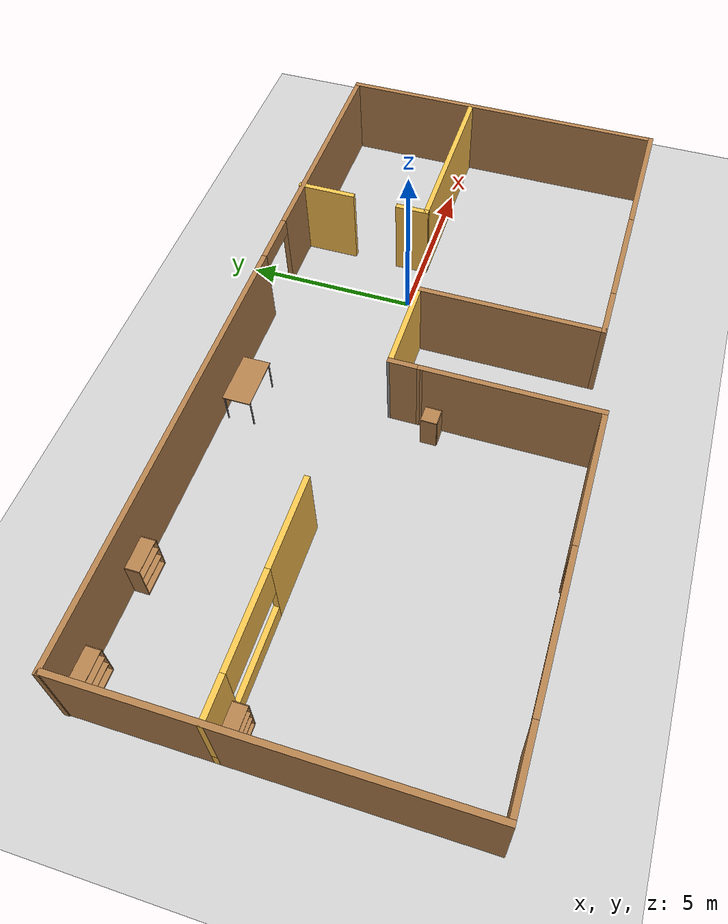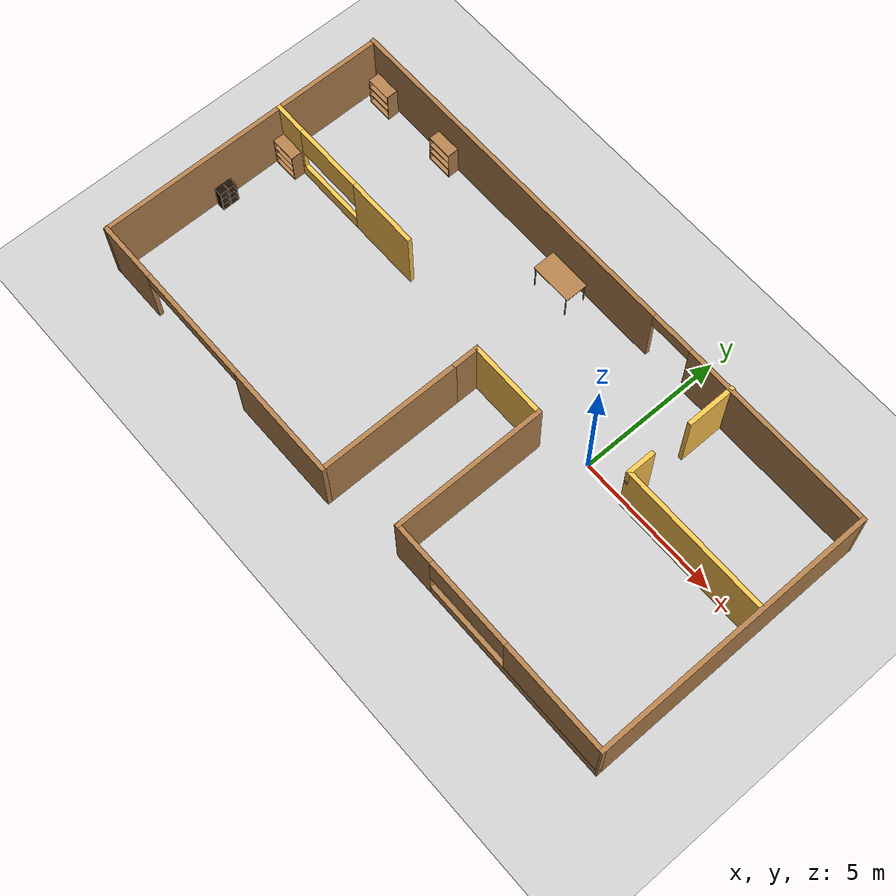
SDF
<sdf version="1.7">
 <world name="default">
  <model name="ground_plane">
   <static>1</static>
   <link name="link">
    <collision name="collision">
     <geometry><plane><normal>0 0 1</normal><size>100 100</size></plane></geometry>
     <surface>
      <contact><collide_bitmask>65535</collide_bitmask></contact>
      <friction><ode><mu>100</mu><mu2>50</mu2></ode></friction>
     </surface>
    </collision>
    <visual name="visual">
     <cast_shadows>0</cast_shadows>
     <geometry><plane><normal>0 0 1</normal><size>100 100</size></plane></geometry>
     <material>
      <script><uri>file://media/materials/scripts/gazebo.material</uri><name>Gazebo/Grey</name></script>
     </material>
    </visual>
   </link>
  </model>
  <model name="Building">
   <pose>-3.7513 -1.28826 0 0 -0 0</pose>
   <link name="Wall_0">
    <collision name="Wall_0_Collision">
     <geometry><box><size>10.3409 0.15 2.5</size></box></geometry>
     <pose>0 0 1.25 0 -0 0</pose>
    </collision>
    <visual name="Wall_0_Visual">
     <pose>0 0 1.25 0 -0 0</pose>
     <geometry><box><size>10.3409 0.15 2.5</size></box></geometry>
     <material>
      <script><uri>file://media/materials/scripts/gazebo.material</uri><name>Gazebo/Wood</name></script>
      <ambient>1 1 1 1</ambient>
     </material>
     <meta><layer>0</layer></meta>
    </visual>
    <pose>-10.4852 -0.044615 0 0 0 -1.5708</pose>
   </link>
   <link name="Wall_1">
    <pose>-5.42169 -5.14004 0 0 -0 0</pose>
    <visual name="Wall_1_Visual_0">
     <pose>-4.05898 0 1.25 0 -0 0</pose>
     <geometry><box><size>2.15905 0.15 2.5</size></box></geometry>
     <material>
      <script><uri>file://media/materials/scripts/gazebo.material</uri><name>Gazebo/Wood</name></script>
      <ambient>0.760784 0.662745 0.627451 1</ambient>
     </material>
     <meta><layer>0</layer></meta>
    </visual>
    <collision name="Wall_1_Collision_0">
     <geometry><box><size>2.15905 0.15 2.5</size></box></geometry>
     <pose>-4.05898 0 1.25 0 -0 0</pose>
    </collision>
    <visual name="Wall_1_Visual_1">
     <pose>3.14775 0 1.25 0 -0 0</pose>
     <geometry><box><size>3.98151 0.15 2.5</size></box></geometry>
     <material>
      <script><uri>file://media/materials/scripts/gazebo.material</uri><name>Gazebo/Wood</name></script>
      <ambient>0.760784 0.662745 0.627451 1</ambient>
     </material>
     <meta><layer>0</layer></meta>
    </visual>
    <collision name="Wall_1_Collision_1">
     <geometry><box><size>3.98151 0.15 2.5</size></box></geometry>
     <pose>3.14775 0 1.25 0 -0 0</pose>
    </collision>
    <visual name="Wall_1_Visual_2">
     <pose>-0.91123 0 2.25 0 -0 0</pose>
     <geometry><box><size>4.13645 0.15 0.5</size></box></geometry>
     <material>
      <script><uri>file://media/materials/scripts/gazebo.material</uri><name>Gazebo/Wood</name></script>
      <ambient>0.760784 0.662745 0.627451 1</ambient>
     </material>
     <meta><layer>0</layer></meta>
    </visual>
    <collision name="Wall_1_Collision_2">
     <geometry><box><size>4.13645 0.15 0.5</size></box></geometry>
     <pose>-0.91123 0 2.25 0 -0 0</pose>
    </collision>
   </link>
   <link name="Wall_11">
    <pose>-7.43569 1.35896 0 0 -0 3.14159</pose>
    <visual name="Wall_11_Visual_0">
     <pose>-1.85039 0 1.25 0 -0 0</pose>
     <geometry><box><size>2.54921 0.15 2.5</size></box></geometry>
     <material>
      <script><uri>file://media/materials/scripts/gazebo.material</uri><name>Gazebo/Grey</name></script>
      <ambient>1 0.764706 0.305882 1</ambient>
     </material>
     <meta><layer>0</layer></meta>
    </visual>
    <collision name="Wall_11_Collision_0">
     <geometry><box><size>2.54921 0.15 2.5</size></box></geometry>
     <pose>-1.85039 0 1.25 0 -0 0</pose>
    </collision>
    <visual name="Wall_11_Visual_1">
     <pose>1.27461 0 0.25 0 -0 0</pose>
     <geometry><box><size>3.70079 0.15 0.5</size></box></geometry>
     <material>
      <script><uri>file://media/materials/scripts/gazebo.material</uri><name>Gazebo/Grey</name></script>
      <ambient>1 0.764706 0.305882 1</ambient>
     </material>
     <meta><layer>0</layer></meta>
    </visual>
    <collision name="Wall_11_Collision_1">
     <geometry><box><size>3.70079 0.15 0.5</size></box></geometry>
     <pose>1.27461 0 0.25 0 -0 0</pose>
    </collision>
    <visual name="Wall_11_Visual_2">
     <pose>2.53911 0 1.5 0 -0 0</pose>
     <geometry><box><size>1.17177 0.15 2</size></box></geometry>
     <material>
      <script><uri>file://media/materials/scripts/gazebo.material</uri><name>Gazebo/Grey</name></script>
      <ambient>1 0.764706 0.305882 1</ambient>
     </material>
     <meta><layer>0</layer></meta>
    </visual>
    <collision name="Wall_11_Collision_2">
     <geometry><box><size>1.17177 0.15 2</size></box></geometry>
     <pose>2.53911 0 1.5 0 -0 0</pose>
    </collision>
    <visual name="Wall_11_Visual_3">
     <pose>0.688722 0 1.9 0 -0 0</pose>
     <geometry><box><size>2.52901 0.15 1.2</size></box></geometry>
     <material>
      <script><uri>file://media/materials/scripts/gazebo.material</uri><name>Gazebo/Grey</name></script>
      <ambient>1 0.764706 0.305882 1</ambient>
     </material>
     <meta><layer>0</layer></meta>
    </visual>
    <collision name="Wall_11_Collision_3">
     <geometry><box><size>2.52901 0.15 1.2</size></box></geometry>
     <pose>0.688722 0 1.9 0 -0 0</pose>
    </collision>
   </link>
   <link name="Wall_16">
    <collision name="Wall_16_Collision">
     <geometry><box><size>1.75 0.15 2.5</size></box></geometry>
     <pose>0 0 1.25 0 -0 0</pose>
    </collision>
    <visual name="Wall_16_Visual">
     <pose>0 0 1.25 0 -0 0</pose>
     <geometry><box><size>1.75 0.15 2.5</size></box></geometry>
     <material>
      <script><uri>file://media/materials/scripts/gazebo.material</uri><name>Gazebo/Grey</name></script>
      <ambient>1 0.764706 0.305882 1</ambient>
     </material>
     <meta><layer>0</layer></meta>
    </visual>
    <pose>5.32883 4.34004 0 0 -0 1.5708</pose>
   </link>
   <link name="Wall_18">
    <collision name="Wall_18_Collision">
     <geometry><box><size>1 0.15 2.5</size></box></geometry>
     <pose>0 0 1.25 0 -0 0</pose>
    </collision>
    <visual name="Wall_18_Visual">
     <pose>0 0 1.25 0 -0 0</pose>
     <geometry><box><size>1 0.15 2.5</size></box></geometry>
     <material>
      <script><uri>file://media/materials/scripts/gazebo.material</uri><name>Gazebo/Grey</name></script>
      <ambient>1 0.764706 0.305882 1</ambient>
     </material>
     <meta><layer>0</layer></meta>
    </visual>
    <pose>5.29366 1.63753 0 0 0 -1.5708</pose>
   </link>
   <link name="Wall_19">
    <collision name="Wall_19_Collision">
     <geometry><box><size>5.25 0.15 2.5</size></box></geometry>
     <pose>0 0 1.25 0 -0 0</pose>
    </collision>
    <visual name="Wall_19_Visual">
     <pose>0 0 1.25 0 -0 0</pose>
     <geometry><box><size>5.25 0.15 2.5</size></box></geometry>
     <material>
      <script><uri>file://media/materials/scripts/gazebo.material</uri><name>Gazebo/Grey</name></script>
      <ambient>1 0.764706 0.305882 1</ambient>
     </material>
     <meta><layer>0</layer></meta>
    </visual>
    <pose>7.84366 1.21253 0 0 -0 0</pose>
   </link>
   <link name="Wall_2">
    <collision name="Wall_2_Collision">
     <geometry><box><size>5 0.15 2.5</size></box></geometry>
     <pose>0 0 1.25 0 -0 0</pose>
    </collision>
    <visual name="Wall_2_Visual">
     <pose>0 0 1.25 0 -0 0</pose>
     <geometry><box><size>5 0.15 2.5</size></box></geometry>
     <material>
      <script><uri>file://media/materials/scripts/gazebo.material</uri><name>Gazebo/Wood</name></script>
      <ambient>1 1 1 1</ambient>
     </material>
     <meta><layer>0</layer></meta>
    </visual>
    <pose>-0.358372 -2.71492 0 0 -0 1.57087</pose>
   </link>
   <link name="Wall_3">
    <collision name="Wall_3_Collision">
     <geometry><box><size>0.975755 0.15 2.5</size></box></geometry>
     <pose>0 0 1.25 0 -0 0</pose>
    </collision>
    <visual name="Wall_3_Visual">
     <pose>0 0 1.25 0 -0 0</pose>
     <geometry><box><size>0.975755 0.15 2.5</size></box></geometry>
     <material>
      <script><uri>file://media/materials/scripts/gazebo.material</uri><name>Gazebo/Wood</name></script>
      <ambient>1 1 1 1</ambient>
     </material>
     <meta><layer>0</layer></meta>
    </visual>
    <pose>-0.358372 0.123081 0 0 -0 1.57037</pose>
   </link>
   <link name="Wall_4">
    <collision name="Wall_4_Collision">
     <geometry><box><size>0.15 0.15 2.5</size></box></geometry>
     <pose>0 0 1.25 0 -0 0</pose>
    </collision>
    <visual name="Wall_4_Visual">
     <pose>0 0 1.25 0 -0 0</pose>
     <geometry><box><size>0.15 0.15 2.5</size></box></geometry>
     <material>
      <script><uri>file://media/materials/scripts/gazebo.material</uri><name>Gazebo/Grey</name></script>
      <ambient>1 1 1 1</ambient>
     </material>
     <meta><layer>0</layer></meta>
    </visual>
    <pose>-0.358196 0.535958 0 0 -0 0</pose>
   </link>
   <link name="Wall_5">
    <collision name="Wall_5_Collision">
     <geometry><box><size>2.795 0.15 2.5</size></box></geometry>
     <pose>0 0 1.25 0 -0 0</pose>
    </collision>
    <visual name="Wall_5_Visual">
     <pose>0 0 1.25 0 -0 0</pose>
     <geometry><box><size>2.795 0.15 2.5</size></box></geometry>
     <material>
      <script><uri>file://media/materials/scripts/gazebo.material</uri><name>Gazebo/Grey</name></script>
      <ambient>1 0.764706 0.305882 1</ambient>
     </material>
     <meta><layer>0</layer></meta>
    </visual>
    <pose>0.964304 0.535958 0 0 -0 0</pose>
   </link>
   <link name="Wall_6">
    <collision name="Wall_6_Collision">
     <geometry><box><size>5.3177 0.15 2.5</size></box></geometry>
     <pose>0 0 1.25 0 -0 0</pose>
    </collision>
    <visual name="Wall_6_Visual">
     <pose>0 0 1.25 0 -0 0</pose>
     <geometry><box><size>5.3177 0.15 2.5</size></box></geometry>
     <material>
      <script><uri>file://media/materials/scripts/gazebo.material</uri><name>Gazebo/Wood</name></script>
      <ambient>1 1 1 1</ambient>
     </material>
     <meta><layer>0</layer></meta>
    </visual>
    <pose>2.2868 -2.04804 0 0 0 -1.5708</pose>
   </link>
   <link name="Wall_7">
    <pose>6.3973 -4.62854 0 0 -0 0.000851</pose>
    <visual name="Wall_7_Visual_0">
     <pose>-3.44746 0 1.25 0 -0 0</pose>
     <geometry><box><size>1.47674 0.15 2.5</size></box></geometry>
     <material>
      <script><uri>file://media/materials/scripts/gazebo.material</uri><name>Gazebo/Wood</name></script>
      <ambient>1 1 1 1</ambient>
     </material>
     <meta><layer>0</layer></meta>
    </visual>
    <collision name="Wall_7_Collision_0">
     <geometry><box><size>1.47674 0.15 2.5</size></box></geometry>
     <pose>-3.44746 0 1.25 0 -0 0</pose>
    </collision>
    <visual name="Wall_7_Visual_1">
     <pose>0.738369 0 0.25 0 -0 0</pose>
     <geometry><box><size>6.89492 0.15 0.5</size></box></geometry>
     <material>
      <script><uri>file://media/materials/scripts/gazebo.material</uri><name>Gazebo/Wood</name></script>
      <ambient>1 1 1 1</ambient>
     </material>
     <meta><layer>0</layer></meta>
    </visual>
    <collision name="Wall_7_Collision_1">
     <geometry><box><size>6.89492 0.15 0.5</size></box></geometry>
     <pose>0.738369 0 0.25 0 -0 0</pose>
    </collision>
    <visual name="Wall_7_Visual_2">
     <pose>2.26409 0 1.5 0 -0 0</pose>
     <geometry><box><size>3.84348 0.15 2</size></box></geometry>
     <material>
      <script><uri>file://media/materials/scripts/gazebo.material</uri><name>Gazebo/Wood</name></script>
      <ambient>1 1 1 1</ambient>
     </material>
     <meta><layer>0</layer></meta>
    </visual>
    <collision name="Wall_7_Collision_2">
     <geometry><box><size>3.84348 0.15 2</size></box></geometry>
     <pose>2.26409 0 1.5 0 -0 0</pose>
    </collision>
    <visual name="Wall_7_Visual_3">
     <pose>-1.18337 0 1.9 0 -0 0</pose>
     <geometry><box><size>3.05144 0.15 1.2</size></box></geometry>
     <material>
      <script><uri>file://media/materials/scripts/gazebo.material</uri><name>Gazebo/Wood</name></script>
      <ambient>1 1 1 1</ambient>
     </material>
     <meta><layer>0</layer></meta>
    </visual>
    <collision name="Wall_7_Collision_3">
     <geometry><box><size>3.05144 0.15 1.2</size></box></geometry>
     <pose>-1.18337 0 1.9 0 -0 0</pose>
    </collision>
   </link>
   <link name="Wall_8">
    <collision name="Wall_8_Collision">
     <geometry><box><size>9.87 0.15 2.5</size></box></geometry>
     <pose>0 0 1.25 0 -0 0</pose>
    </collision>
    <visual name="Wall_8_Visual">
     <pose>0 0 1.25 0 -0 0</pose>
     <geometry><box><size>9.87 0.15 2.5</size></box></geometry>
     <material>
      <script><uri>file://media/materials/scripts/gazebo.material</uri><name>Gazebo/Wood</name></script>
      <ambient>1 1 1 1</ambient>
     </material>
     <meta><layer>0</layer></meta>
    </visual>
    <pose>10.5078 0.234958 0 0 -0 1.5708</pose>
   </link>
   <link name="Wall_9">
    <pose>-0.000196 5.09496 0 0 -0 3.14159</pose>
    <visual name="Wall_9_Visual_0">
     <pose>-7.14444 0 1.25 0 -0 0</pose>
     <geometry><box><size>6.87713 0.15 2.5</size></box></geometry>
     <material>
      <script><uri>file://media/materials/scripts/gazebo.material</uri><name>Gazebo/Wood</name></script>
      <ambient>1 1 1 1</ambient>
     </material>
     <meta><layer>0</layer></meta>
    </visual>
    <collision name="Wall_9_Collision_0">
     <geometry><box><size>6.87713 0.15 2.5</size></box></geometry>
     <pose>-7.14444 0 1.25 0 -0 0</pose>
    </collision>
    <visual name="Wall_9_Visual_1">
     <pose>4.18758 0 1.25 0 -0 0</pose>
     <geometry><box><size>12.7908 0.15 2.5</size></box></geometry>
     <material>
      <script><uri>file://media/materials/scripts/gazebo.material</uri><name>Gazebo/Wood</name></script>
      <ambient>1 1 1 1</ambient>
     </material>
     <meta><layer>0</layer></meta>
    </visual>
    <collision name="Wall_9_Collision_1">
     <geometry><box><size>12.7908 0.15 2.5</size></box></geometry>
     <pose>4.18758 0 1.25 0 -0 0</pose>
    </collision>
    <visual name="Wall_9_Visual_2">
     <pose>-2.95686 0 2.25 0 -0 0</pose>
     <geometry><box><size>1.49804 0.15 0.5</size></box></geometry>
     <material>
      <script><uri>file://media/materials/scripts/gazebo.material</uri><name>Gazebo/Wood</name></script>
      <ambient>1 1 1 1</ambient>
     </material>
     <meta><layer>0</layer></meta>
    </visual>
    <collision name="Wall_9_Collision_2">
     <geometry><box><size>1.49804 0.15 0.5</size></box></geometry>
     <pose>-2.95686 0 2.25 0 -0 0</pose>
    </collision>
   </link>
   <static>1</static>
  </model>
  <model name="table_clone">
   <static>1</static>
   <link name="link">
    <collision name="surface">
     <pose>0 0 1 0 -0 0</pose>
     <geometry><box><size>1.5 0.8 0.03</size></box></geometry>
     <surface><friction><ode><mu>0.6</mu><mu2>0.6</mu2></ode></friction></surface>
    </collision>
    <visual name="visual1">
     <pose>0 0 1 0 -0 0</pose>
     <geometry><box><size>1.5 0.8 0.03</size></box></geometry>
     <material>
      <script><uri>file://media/materials/scripts/gazebo.material</uri><name>Gazebo/Wood</name></script>
     </material>
    </visual>
    <collision name="front_left_leg">
     <pose>0.68 0.38 0.5 0 -0 0</pose>
     <geometry><cylinder><radius>0.02</radius><length>1</length></cylinder></geometry>
    </collision>
    <visual name="front_left_leg">
     <pose>0.68 0.38 0.5 0 -0 0</pose>
     <geometry><cylinder><radius>0.02</radius><length>1</length></cylinder></geometry>
     <material>
      <script><uri>file://media/materials/scripts/gazebo.material</uri><name>Gazebo/Grey</name></script>
     </material>
    </visual>
    <collision name="front_right_leg">
     <pose>0.68 -0.38 0.5 0 -0 0</pose>
     <geometry><cylinder><radius>0.02</radius><length>1</length></cylinder></geometry>
    </collision>
    <visual name="front_right_leg">
     <pose>0.68 -0.38 0.5 0 -0 0</pose>
     <geometry><cylinder><radius>0.02</radius><length>1</length></cylinder></geometry>
     <material>
      <script><uri>file://media/materials/scripts/gazebo.material</uri><name>Gazebo/Grey</name></script>
     </material>
    </visual>
    <collision name="back_right_leg">
     <pose>-0.68 -0.38 0.5 0 -0 0</pose>
     <geometry><cylinder><radius>0.02</radius><length>1</length></cylinder></geometry>
    </collision>
    <visual name="back_right_leg">
     <pose>-0.68 -0.38 0.5 0 -0 0</pose>
     <geometry><cylinder><radius>0.02</radius><length>1</length></cylinder></geometry>
     <material>
      <script><uri>file://media/materials/scripts/gazebo.material</uri><name>Gazebo/Grey</name></script>
     </material>
    </visual>
    <collision name="back_left_leg">
     <pose>-0.68 0.38 0.5 0 -0 0</pose>
     <geometry><cylinder><radius>0.02</radius><length>1</length></cylinder></geometry>
    </collision>
    <visual name="back_left_leg">
     <pose>-0.68 0.38 0.5 0 -0 0</pose>
     <geometry><cylinder><radius>0.02</radius><length>1</length></cylinder></geometry>
     <material>
      <script><uri>file://media/materials/scripts/gazebo.material</uri><name>Gazebo/Grey</name></script>
     </material>
    </visual>
   </link>
   <pose>-4.81821 3.19325 0 0 -0 0</pose>
  </model>
  <model name="bookshelf_0">
   <static>1</static>
   <link name="link">
    <inertial><mass>1</mass></inertial>
    <collision name="back">
     <pose>0 0.005 0.6 0 -0 0</pose>
     <geometry><box><size>0.9 0.01 1.2</size></box></geometry>
    </collision>
    <visual name="visual1">
     <pose>0 0.005 0.6 0 -0 0</pose>
     <geometry><box><size>0.9 0.01 1.2</size></box></geometry>
     <material>
      <script><uri>file://media/materials/scripts/gazebo.material</uri><name>Gazebo/Wood</name></script>
     </material>
    </visual>
    <collision name="left_side">
     <pose>0.45 -0.195 0.6 0 -0 0</pose>
     <geometry><box><size>0.02 0.4 1.2</size></box></geometry>
    </collision>
    <visual name="visual2">
     <pose>0.45 -0.195 0.6 0 -0 0</pose>
     <geometry><box><size>0.02 0.4 1.2</size></box></geometry>
     <material>
      <script><uri>file://media/materials/scripts/gazebo.material</uri><name>Gazebo/Wood</name></script>
     </material>
    </visual>
    <collision name="right_side">
     <pose>-0.45 -0.195 0.6 0 -0 0</pose>
     <geometry><box><size>0.02 0.4 1.2</size></box></geometry>
    </collision>
    <visual name="visual3">
     <pose>-0.45 -0.195 0.6 0 -0 0</pose>
     <geometry><box><size>0.02 0.4 1.2</size></box></geometry>
     <material>
      <script><uri>file://media/materials/scripts/gazebo.material</uri><name>Gazebo/Wood</name></script>
     </material>
    </visual>
    <collision name="bottom">
     <pose>0 -0.195 0.03 0 -0 0</pose>
     <geometry><box><size>0.88 0.4 0.06</size></box></geometry>
    </collision>
    <visual name="visual4">
     <pose>0 -0.195 0.03 0 -0 0</pose>
     <geometry><box><size>0.88 0.4 0.06</size></box></geometry>
     <material>
      <script><uri>file://media/materials/scripts/gazebo.material</uri><name>Gazebo/Wood</name></script>
     </material>
    </visual>
    <collision name="top">
     <pose>0 -0.195 1.19 0 -0 0</pose>
     <geometry><box><size>0.88 0.4 0.02</size></box></geometry>
    </collision>
    <visual name="visual5">
     <pose>0 -0.195 1.19 0 -0 0</pose>
     <geometry><box><size>0.88 0.4 0.02</size></box></geometry>
     <material>
      <script><uri>file://media/materials/scripts/gazebo.material</uri><name>Gazebo/Wood</name></script>
     </material>
    </visual>
    <collision name="low_shelf">
     <pose>0 -0.195 0.43 0 -0 0</pose>
     <geometry><box><size>0.88 0.4 0.02</size></box></geometry>
    </collision>
    <visual name="visual6">
     <pose>0 -0.195 0.43 0 -0 0</pose>
     <geometry><box><size>0.88 0.4 0.02</size></box></geometry>
     <material>
      <script><uri>file://media/materials/scripts/gazebo.material</uri><name>Gazebo/Wood</name></script>
     </material>
    </visual>
    <collision name="high_shelf">
     <pose>0 -0.195 0.8 0 -0 0</pose>
     <geometry><box><size>0.88 0.4 0.02</size></box></geometry>
    </collision>
    <visual name="visual7">
     <pose>0 -0.195 0.8 0 -0 0</pose>
     <geometry><box><size>0.88 0.4 0.02</size></box></geometry>
     <material>
      <script><uri>file://media/materials/scripts/gazebo.material</uri><name>Gazebo/Wood</name></script>
     </material>
    </visual>
   </link>
   <pose>-13.495 3.67812 0 0 -0 0</pose>
  </model>
  <model name="bookshelf_0_clone">
   <static>1</static>
   <link name="link">
    <inertial><mass>1</mass></inertial>
    <collision name="back">
     <pose>0 0.005 0.6 0 -0 0</pose>
     <geometry><box><size>0.9 0.01 1.2</size></box></geometry>
    </collision>
    <visual name="visual1">
     <pose>0 0.005 0.6 0 -0 0</pose>
     <geometry><box><size>0.9 0.01 1.2</size></box></geometry>
     <material>
      <script><uri>file://media/materials/scripts/gazebo.material</uri><name>Gazebo/Wood</name></script>
     </material>
    </visual>
    <collision name="left_side">
     <pose>0.45 -0.195 0.6 0 -0 0</pose>
     <geometry><box><size>0.02 0.4 1.2</size></box></geometry>
    </collision>
    <visual name="visual2">
     <pose>0.45 -0.195 0.6 0 -0 0</pose>
     <geometry><box><size>0.02 0.4 1.2</size></box></geometry>
     <material>
      <script><uri>file://media/materials/scripts/gazebo.material</uri><name>Gazebo/Wood</name></script>
     </material>
    </visual>
    <collision name="right_side">
     <pose>-0.45 -0.195 0.6 0 -0 0</pose>
     <geometry><box><size>0.02 0.4 1.2</size></box></geometry>
    </collision>
    <visual name="visual3">
     <pose>-0.45 -0.195 0.6 0 -0 0</pose>
     <geometry><box><size>0.02 0.4 1.2</size></box></geometry>
     <material>
      <script><uri>file://media/materials/scripts/gazebo.material</uri><name>Gazebo/Wood</name></script>
     </material>
    </visual>
    <collision name="bottom">
     <pose>0 -0.195 0.03 0 -0 0</pose>
     <geometry><box><size>0.88 0.4 0.06</size></box></geometry>
    </collision>
    <visual name="visual4">
     <pose>0 -0.195 0.03 0 -0 0</pose>
     <geometry><box><size>0.88 0.4 0.06</size></box></geometry>
     <material>
      <script><uri>file://media/materials/scripts/gazebo.material</uri><name>Gazebo/Wood</name></script>
     </material>
    </visual>
    <collision name="top">
     <pose>0 -0.195 1.19 0 -0 0</pose>
     <geometry><box><size>0.88 0.4 0.02</size></box></geometry>
    </collision>
    <visual name="visual5">
     <pose>0 -0.195 1.19 0 -0 0</pose>
     <geometry><box><size>0.88 0.4 0.02</size></box></geometry>
     <material>
      <script><uri>file://media/materials/scripts/gazebo.material</uri><name>Gazebo/Wood</name></script>
     </material>
    </visual>
    <collision name="low_shelf">
     <pose>0 -0.195 0.43 0 -0 0</pose>
     <geometry><box><size>0.88 0.4 0.02</size></box></geometry>
    </collision>
    <visual name="visual6">
     <pose>0 -0.195 0.43 0 -0 0</pose>
     <geometry><box><size>0.88 0.4 0.02</size></box></geometry>
     <material>
      <script><uri>file://media/materials/scripts/gazebo.material</uri><name>Gazebo/Wood</name></script>
     </material>
    </visual>
    <collision name="high_shelf">
     <pose>0 -0.195 0.8 0 -0 0</pose>
     <geometry><box><size>0.88 0.4 0.02</size></box></geometry>
    </collision>
    <visual name="visual7">
     <pose>0 -0.195 0.8 0 -0 0</pose>
     <geometry><box><size>0.88 0.4 0.02</size></box></geometry>
     <material>
      <script><uri>file://media/materials/scripts/gazebo.material</uri><name>Gazebo/Wood</name></script>
     </material>
    </visual>
   </link>
   <pose>-10.5967 3.72008 0 0 -0 0</pose>
  </model>
  <model name="cabinet_clone_0">
   <static>1</static>
   <link name="cabinet_bottom_plate">
    <inertial>
     <pose>0 0 -1 0 -0 0</pose>
     <inertia><ixx>2.05</ixx><ixy>0</ixy><ixz>0</ixz><iyy>2.05</iyy><iyz>0</iyz><izz>2.05</izz></inertia>
     <mass>25</mass>
    </inertial>
    <collision name="cabinet_bottom_plate_geom">
     <pose>0 0 0.01 0 -0 0</pose>
     <geometry><box><size>0.45 0.45 0.02</size></box></geometry>
    </collision>
    <visual name="cabinet_bottom_plate_geom_visual">
     <pose>0 0 0.01 0 -0 0</pose>
     <geometry><box><size>0.45 0.45 0.02</size></box></geometry>
     <material>
      <script><uri>file://media/materials/scripts/gazebo.material</uri><name>Gazebo/Wood</name></script>
     </material>
    </visual>
    <collision name="cabinet_bottom_plate_geom_cabinet_back_plate">
     <pose>0.235 0 0.51 0 -0 0</pose>
     <geometry><box><size>0.02 0.45 1.02</size></box></geometry>
    </collision>
    <visual name="cabinet_bottom_plate_geom_cabinet_back_plate_visual">
     <pose>0.235 0 0.51 0 -0 0</pose>
     <geometry><box><size>0.02 0.45 1.02</size></box></geometry>
     <material>
      <script><uri>file://media/materials/scripts/gazebo.material</uri><name>Gazebo/Wood</name></script>
     </material>
    </visual>
    <collision name="cabinet_bottom_plate_geom_cabinet_left_plate">
     <pose>0 0.235 0.51 0 -0 0</pose>
     <geometry><box><size>0.45 0.02 1.02</size></box></geometry>
    </collision>
    <visual name="cabinet_bottom_plate_geom_cabinet_left_plate_visual">
     <pose>0 0.235 0.51 0 -0 0</pose>
     <geometry><box><size>0.45 0.02 1.02</size></box></geometry>
     <material>
      <script><uri>file://media/materials/scripts/gazebo.material</uri><name>Gazebo/Wood</name></script>
     </material>
    </visual>
    <collision name="cabinet_bottom_plate_geom_cabinet_middle_plate">
     <pose>0 0 0.51 0 -0 0</pose>
     <geometry><box><size>0.45 0.45 0.02</size></box></geometry>
    </collision>
    <visual name="cabinet_bottom_plate_geom_cabinet_middle_plate_visual">
     <pose>0 0 0.51 0 -0 0</pose>
     <geometry><box><size>0.45 0.45 0.02</size></box></geometry>
     <material>
      <script><uri>file://media/materials/scripts/gazebo.material</uri><name>Gazebo/Wood</name></script>
     </material>
    </visual>
    <collision name="cabinet_bottom_plate_geom_cabinet_right_plate">
     <pose>0 -0.235 0.51 0 -0 0</pose>
     <geometry><box><size>0.45 0.02 1.02</size></box></geometry>
    </collision>
    <visual name="cabinet_bottom_plate_geom_cabinet_right_plate_visual">
     <pose>0 -0.235 0.51 0 -0 0</pose>
     <geometry><box><size>0.45 0.02 1.02</size></box></geometry>
     <material>
      <script><uri>file://media/materials/scripts/gazebo.material</uri><name>Gazebo/Wood</name></script>
     </material>
    </visual>
    <collision name="cabinet_bottom_plate_geom_cabinet_top_plate">
     <pose>0 0 1.01 0 -0 0</pose>
     <geometry><box><size>0.45 0.45 0.02</size></box></geometry>
    </collision>
    <visual name="cabinet_bottom_plate_geom_cabinet_top_plate_visual">
     <pose>0 0 1.01 0 -0 0</pose>
     <geometry><box><size>0.45 0.45 0.02</size></box></geometry>
     <material>
      <script><uri>file://media/materials/scripts/gazebo.material</uri><name>Gazebo/Wood</name></script>
     </material>
    </visual>
   </link>
   <pose>-4.47117 -2.00227 0 0 0 -1.58296</pose>
  </model>
  <model name="bookshelf_1">
   <static>1</static>
   <link name="link">
    <inertial><mass>1</mass></inertial>
    <collision name="back">
     <pose>0 0.005 0.6 0 -0 0</pose>
     <geometry><box><size>0.9 0.01 1.2</size></box></geometry>
    </collision>
    <visual name="visual1">
     <pose>0 0.005 0.6 0 -0 0</pose>
     <geometry><box><size>0.9 0.01 1.2</size></box></geometry>
     <material>
      <script><uri>file://media/materials/scripts/gazebo.material</uri><name>Gazebo/Wood</name></script>
     </material>
    </visual>
    <collision name="left_side">
     <pose>0.45 -0.195 0.6 0 -0 0</pose>
     <geometry><box><size>0.02 0.4 1.2</size></box></geometry>
    </collision>
    <visual name="visual2">
     <pose>0.45 -0.195 0.6 0 -0 0</pose>
     <geometry><box><size>0.02 0.4 1.2</size></box></geometry>
     <material>
      <script><uri>file://media/materials/scripts/gazebo.material</uri><name>Gazebo/Wood</name></script>
     </material>
    </visual>
    <collision name="right_side">
     <pose>-0.45 -0.195 0.6 0 -0 0</pose>
     <geometry><box><size>0.02 0.4 1.2</size></box></geometry>
    </collision>
    <visual name="visual3">
     <pose>-0.45 -0.195 0.6 0 -0 0</pose>
     <geometry><box><size>0.02 0.4 1.2</size></box></geometry>
     <material>
      <script><uri>file://media/materials/scripts/gazebo.material</uri><name>Gazebo/Wood</name></script>
     </material>
    </visual>
    <collision name="bottom">
     <pose>0 -0.195 0.03 0 -0 0</pose>
     <geometry><box><size>0.88 0.4 0.06</size></box></geometry>
    </collision>
    <visual name="visual4">
     <pose>0 -0.195 0.03 0 -0 0</pose>
     <geometry><box><size>0.88 0.4 0.06</size></box></geometry>
     <material>
      <script><uri>file://media/materials/scripts/gazebo.material</uri><name>Gazebo/Wood</name></script>
     </material>
    </visual>
    <collision name="top">
     <pose>0 -0.195 1.19 0 -0 0</pose>
     <geometry><box><size>0.88 0.4 0.02</size></box></geometry>
    </collision>
    <visual name="visual5">
     <pose>0 -0.195 1.19 0 -0 0</pose>
     <geometry><box><size>0.88 0.4 0.02</size></box></geometry>
     <material>
      <script><uri>file://media/materials/scripts/gazebo.material</uri><name>Gazebo/Wood</name></script>
     </material>
    </visual>
    <collision name="low_shelf">
     <pose>0 -0.195 0.43 0 -0 0</pose>
     <geometry><box><size>0.88 0.4 0.02</size></box></geometry>
    </collision>
    <visual name="visual6">
     <pose>0 -0.195 0.43 0 -0 0</pose>
     <geometry><box><size>0.88 0.4 0.02</size></box></geometry>
     <material>
      <script><uri>file://media/materials/scripts/gazebo.material</uri><name>Gazebo/Wood</name></script>
     </material>
    </visual>
    <collision name="high_shelf">
     <pose>0 -0.195 0.8 0 -0 0</pose>
     <geometry><box><size>0.88 0.4 0.02</size></box></geometry>
    </collision>
    <visual name="visual7">
     <pose>0 -0.195 0.8 0 -0 0</pose>
     <geometry><box><size>0.88 0.4 0.02</size></box></geometry>
     <material>
      <script><uri>file://media/materials/scripts/gazebo.material</uri><name>Gazebo/Wood</name></script>
     </material>
    </visual>
   </link>
   <pose>-13.6966 -0.003768 0 0 -0 0</pose>
  </model>
  <model name="6_Cube_StorageE">
   <link name="Wall_0">
    <pose>0 0 0.01 0 -0 0</pose>
    <inertial>
     <mass>1.6201</mass>
     <inertia><ixx>0.0119</ixx><iyy>0.0631</iyy><izz>0.0513</izz><ixy>0</ixy><ixz>0</ixz><iyz>0</iyz></inertia>
    </inertial>
    <collision name="Wall_0_Collision"><geometry><box><size>0.616 0.296 0.02</size></box></geometry></collision>
    <visual name="Wall_0_Visual">
     <geometry><box><size>0.616 0.296 0.02</size></box></geometry>
     <material>
      <script><uri>file://media/materials/scripts/gazebo.material</uri><name>Gazebo/Grey</name></script>
      <ambient>0.105882 0.0509804 0 1</ambient>
     </material>
    </visual>
   </link>
   <joint name="0_2" type="fixed">
    <pose>-0.308 0 0 0 -0 0</pose>
    <parent>Wall_2</parent>
    <child>Wall_0</child>
    <axis><xyz>1 0 0</xyz><limit><lower>-1e+16</lower><upper>1e+16</upper></limit></axis>
   </joint>
   <joint name="0_12" type="fixed">
    <parent>Wall_12</parent>
    <child>Wall_0</child>
    <axis><xyz>0 0 1</xyz><limit><lower>-1e+16</lower><upper>1e+16</upper></limit></axis>
   </joint>
   <joint name="0_4" type="fixed">
    <pose>0.308 0 0 0 -0 0</pose>
    <parent>Wall_4</parent>
    <child>Wall_0</child>
    <axis><xyz>1 0 0</xyz><limit><lower>-1e+16</lower><upper>1e+16</upper></limit></axis>
   </joint>
   <link name="Wall_10">
    <pose>0 0 0.61 0 -0 0</pose>
    <inertial>
     <mass>1.6201</mass>
     <inertia><ixx>0.0119</ixx><iyy>0.0631</iyy><izz>0.0513</izz><ixy>0</ixy><ixz>0</ixz><iyz>0</iyz></inertia>
    </inertial>
    <collision name="Wall_10_Collision"><geometry><box><size>0.616 0.296 0.02</size></box></geometry></collision>
    <visual name="Wall_10_Visual">
     <geometry><box><size>0.616 0.296 0.02</size></box></geometry>
     <material>
      <script><uri>file://media/materials/scripts/gazebo.material</uri><name>Gazebo/Grey</name></script>
      <ambient>0.105882 0.0509804 0 1</ambient>
     </material>
    </visual>
   </link>
   <joint name="10_2" type="fixed">
    <pose>-0.308 0 0 0 -0 0</pose>
    <parent>Wall_2</parent>
    <child>Wall_10</child>
    <axis><xyz>1 0 0</xyz><limit><lower>-1e+16</lower><upper>1e+16</upper></limit></axis>
   </joint>
   <joint name="10_12" type="fixed">
    <parent>Wall_12</parent>
    <child>Wall_10</child>
    <axis><xyz>0 0 1</xyz><limit><lower>-1e+16</lower><upper>1e+16</upper></limit></axis>
   </joint>
   <joint name="10_4" type="fixed">
    <pose>0.308 0 0 0 -0 0</pose>
    <parent>Wall_4</parent>
    <child>Wall_10</child>
    <axis><xyz>1 0 0</xyz><limit><lower>-1e+16</lower><upper>1e+16</upper></limit></axis>
   </joint>
   <link name="Wall_12">
    <pose>0 0 0.4575 0 -0 0</pose>
    <inertial>
     <mass>2.4065</mass>
     <inertia><ixx>0.0177</ixx><iyy>0.1855</iyy><izz>0.168</izz><ixy>0</ixy><ixz>0</ixz><iyz>0</iyz></inertia>
    </inertial>
    <collision name="Wall_12_Collision"><geometry><box><size>0.02 0.296 0.915</size></box></geometry></collision>
    <visual name="Wall_12_Visual">
     <geometry><box><size>0.02 0.296 0.915</size></box></geometry>
     <material>
      <script><uri>file://media/materials/scripts/gazebo.material</uri><name>Gazebo/Grey</name></script>
      <ambient>0.105882 0.0509804 0 1</ambient>
     </material>
    </visual>
   </link>
   <link name="Wall_2">
    <pose>-0.298 0 0.4575 0 -0 0</pose>
    <inertial>
     <mass>2.4065</mass>
     <inertia><ixx>0.0177</ixx><iyy>0.1855</iyy><izz>0.168</izz><ixy>0</ixy><ixz>0</ixz><iyz>0</iyz></inertia>
    </inertial>
    <collision name="Wall_2_Collision"><geometry><box><size>0.02 0.296 0.915</size></box></geometry></collision>
    <visual name="Wall_2_Visual">
     <geometry><box><size>0.02 0.296 0.915</size></box></geometry>
     <material>
      <script><uri>file://media/materials/scripts/gazebo.material</uri><name>Gazebo/Grey</name></script>
      <ambient>0.105882 0.0509804 0 1</ambient>
     </material>
    </visual>
   </link>
   <link name="Wall_4">
    <pose>0.298 0 0.4575 0 -0 0</pose>
    <inertial>
     <mass>2.4065</mass>
     <inertia><ixx>0.0177</ixx><iyy>0.1855</iyy><izz>0.168</izz><ixy>0</ixy><ixz>0</ixz><iyz>0</iyz></inertia>
    </inertial>
    <collision name="Wall_4_Collision"><geometry><box><size>0.02 0.296 0.915</size></box></geometry></collision>
    <visual name="Wall_4_Visual">
     <geometry><box><size>0.02 0.296 0.915</size></box></geometry>
     <material>
      <script><uri>file://media/materials/scripts/gazebo.material</uri><name>Gazebo/Grey</name></script>
      <ambient>0.105882 0.0509804 0 1</ambient>
     </material>
    </visual>
   </link>
   <link name="Wall_6">
    <pose>0 0 0.905 0 -0 0</pose>
    <inertial>
     <mass>1.6201</mass>
     <inertia><ixx>0.0119</ixx><iyy>0.0631</iyy><izz>0.0513</izz><ixy>0</ixy><ixz>0</ixz><iyz>0</iyz></inertia>
    </inertial>
    <collision name="Wall_6_Collision"><geometry><box><size>0.616 0.296 0.02</size></box></geometry></collision>
    <visual name="Wall_6_Visual">
     <geometry><box><size>0.616 0.296 0.02</size></box></geometry>
     <material>
      <script><uri>file://media/materials/scripts/gazebo.material</uri><name>Gazebo/Grey</name></script>
      <ambient>0.105882 0.0509804 0 1</ambient>
     </material>
    </visual>
   </link>
   <joint name="6_2" type="fixed">
    <pose>-0.308 0 0 0 -0 0</pose>
    <parent>Wall_2</parent>
    <child>Wall_6</child>
    <axis><xyz>2 0 0</xyz><limit><lower>-1e+16</lower><upper>1e+16</upper></limit></axis>
   </joint>
   <joint name="6_12" type="fixed">
    <parent>Wall_12</parent>
    <child>Wall_6</child>
    <axis><xyz>0 0 1</xyz><limit><lower>-1e+16</lower><upper>1e+16</upper></limit></axis>
   </joint>
   <joint name="6_4" type="fixed">
    <pose>0.308 0 0 0 -0 0</pose>
    <parent>Wall_4</parent>
    <child>Wall_6</child>
    <axis><xyz>1 0 0</xyz><limit><lower>-1e+16</lower><upper>1e+16</upper></limit></axis>
   </joint>
   <link name="Wall_8">
    <pose>0 0 0.305 0 -0 0</pose>
    <inertial>
     <mass>1.6201</mass>
     <inertia><ixx>0.0119</ixx><iyy>0.0631</iyy><izz>0.0513</izz><ixy>0</ixy><ixz>0</ixz><iyz>0</iyz></inertia>
    </inertial>
    <collision name="Wall_8_Collision"><geometry><box><size>0.616 0.296 0.02</size></box></geometry></collision>
    <visual name="Wall_8_Visual">
     <geometry><box><size>0.616 0.296 0.02</size></box></geometry>
     <material>
      <script><uri>file://media/materials/scripts/gazebo.material</uri><name>Gazebo/Grey</name></script>
      <ambient>0.105882 0.0509804 0 1</ambient>
     </material>
    </visual>
   </link>
   <joint name="8_2" type="fixed">
    <pose>-0.308 0 0 0 -0 0</pose>
    <parent>Wall_2</parent>
    <child>Wall_8</child>
    <axis><xyz>1 0 0</xyz><limit><lower>-1e+16</lower><upper>1e+16</upper></limit></axis>
   </joint>
   <joint name="8_12" type="fixed">
    <parent>Wall_12</parent>
    <child>Wall_8</child>
    <axis><xyz>0 0 1</xyz><limit><lower>-1e+16</lower><upper>1e+16</upper></limit></axis>
   </joint>
   <joint name="8_4" type="fixed">
    <pose>0.308 0 0 0 -0 0</pose>
    <parent>Wall_4</parent>
    <child>Wall_8</child>
    <axis><xyz>1 0 0</xyz><limit><lower>-1e+16</lower><upper>1e+16</upper></limit></axis>
   </joint>
   <static>1</static>
   <pose>-13.9832 -2.46509 -0 0 -0 1.57491</pose>
  </model>
 </world>
</sdf>
